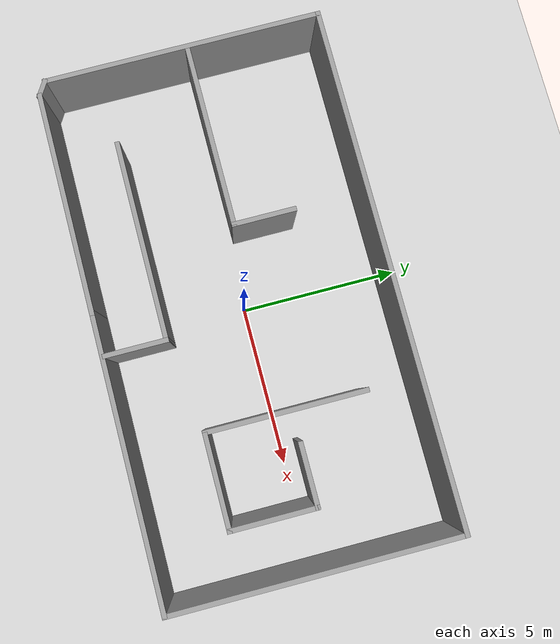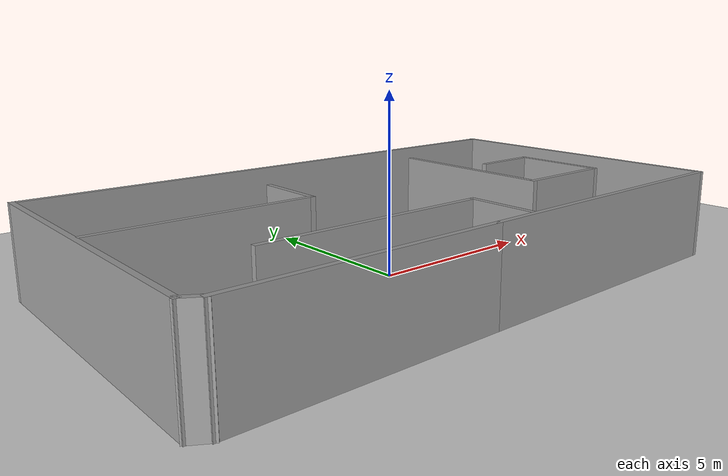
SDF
<sdf version="1.4">
 <world name="default">
  <plugin name="gazebo_octomap" filename="librotors_gazebo_octomap_plugin.so">
   <octomapPubTopic>world/octomap</octomapPubTopic>
   <octomapServiceName>world/get_octomap</octomapServiceName>
  </plugin>
  <plugin name="ros_interface_plugin" filename="librotors_gazebo_ros_interface_plugin.so"/>
  <light name="sun" type="directional">
   <pose>0 0 10 0 -0 0</pose>
   <diffuse>0.8 0.8 0.8 1</diffuse>
   <specular>0.2 0.2 0.2 1</specular>
   <attenuation>
    <range>1000</range>
    <constant>0.9</constant>
    <linear>0.01</linear>
    <quadratic>0.001</quadratic>
   </attenuation>
   <direction>-0.5 0.1 -0.9</direction>
   <spot><inner_angle>0</inner_angle><outer_angle>0</outer_angle><falloff>0</falloff></spot>
  </light>
  <model name="ground_plane">
   <static>1</static>
   <link name="link">
    <collision name="collision">
     <geometry><plane><normal>0 0 1</normal><size>100 100</size></plane></geometry>
     <surface><friction><ode><mu>100</mu><mu2>50</mu2></ode></friction></surface>
    </collision>
    <visual name="visual">
     <cast_shadows>0</cast_shadows>
     <geometry><plane><normal>0 0 1</normal><size>100 100</size></plane></geometry>
     <material>
      <script><uri>file://media/materials/scripts/gazebo.material</uri><name>Gazebo/Grey</name></script>
     </material>
    </visual>
   </link>
  </model>
  <gravity>0 0 -9.8</gravity>
  <magnetic_field>6e-06 2.3e-05 -4.2e-05</magnetic_field>
  <atmosphere type="adiabatic"/>
  <physics type="ode">
   <max_step_size>0.001</max_step_size>
   <real_time_factor>1</real_time_factor>
   <real_time_update_rate>1000</real_time_update_rate>
  </physics>
  <scene><ambient>0.4 0.4 0.4 1</ambient><background>0.7 0.7 0.7 1</background><shadows>1</shadows></scene>
  <spherical_coordinates>
   <surface_model>EARTH_WGS84</surface_model>
   <latitude_deg>0</latitude_deg>
   <longitude_deg>0</longitude_deg>
   <elevation>0</elevation>
   <heading_deg>0</heading_deg>
  </spherical_coordinates>
  <model name="test.world">
   <link name="Wall_0">
    <collision name="Wall_0_Collision">
     <geometry><box><size>7 0.15 2.5</size></box></geometry>
     <pose>0 0 1.25 0 -0 0</pose>
    </collision>
    <visual name="Wall_0_Visual">
     <pose>0 0 1.25 0 -0 0</pose>
     <geometry><box><size>7 0.15 2.5</size></box></geometry>
     <material>
      <script><uri>file://media/materials/scripts/gazebo.material</uri><name>Gazebo/Grey</name></script>
      <ambient>1 1 1 1</ambient>
     </material>
     <meta><layer>0</layer></meta>
    </visual>
    <pose>-4.21082 -4.41082 0 0 -0 3.14159</pose>
   </link>
   <link name="Wall_11">
    <collision name="Wall_11_Collision">
     <geometry><box><size>6.25 0.15 2.5</size></box></geometry>
     <pose>0 0 1.25 0 -0 0</pose>
    </collision>
    <visual name="Wall_11_Visual">
     <pose>0 0 1.25 0 -0 0</pose>
     <geometry><box><size>6.25 0.15 2.5</size></box></geometry>
     <material>
      <script><uri>file://media/materials/scripts/gazebo.material</uri><name>Gazebo/Grey</name></script>
      <ambient>1 1 1 1</ambient>
     </material>
     <meta><layer>0</layer></meta>
    </visual>
    <pose>-2.51437 -2.48681 0 0 -0 0</pose>
   </link>
   <link name="Wall_12">
    <collision name="Wall_12_Collision">
     <geometry><box><size>2 0.15 2.5</size></box></geometry>
     <pose>0 0 1.25 0 -0 0</pose>
    </collision>
    <visual name="Wall_12_Visual">
     <pose>0 0 1.25 0 -0 0</pose>
     <geometry><box><size>2 0.15 2.5</size></box></geometry>
     <material>
      <script><uri>file://media/materials/scripts/gazebo.material</uri><name>Gazebo/Grey</name></script>
      <ambient>1 1 1 1</ambient>
     </material>
     <meta><layer>0</layer></meta>
    </visual>
    <pose>0.535628 -3.41181 0 0 -0 -1.5708</pose>
   </link>
   <link name="Wall_14">
    <collision name="Wall_14_Collision">
     <geometry><box><size>5 0.15 2.5</size></box></geometry>
     <pose>0 0 1.25 0 -0 0</pose>
    </collision>
    <visual name="Wall_14_Visual">
     <pose>0 0 1.25 0 -0 0</pose>
     <geometry><box><size>5 0.15 2.5</size></box></geometry>
     <material>
      <script><uri>file://media/materials/scripts/gazebo.material</uri><name>Gazebo/Grey</name></script>
      <ambient>1 1 1 1</ambient>
     </material>
     <meta><layer>0</layer></meta>
    </visual>
    <pose>3.4103 0.361968 0 0 -0 -1.5708</pose>
   </link>
   <link name="Wall_15">
    <collision name="Wall_15_Collision">
     <geometry><box><size>3 0.15 2.5</size></box></geometry>
     <pose>0 0 1.25 0 -0 0</pose>
    </collision>
    <visual name="Wall_15_Visual">
     <pose>0 0 1.25 0 -0 0</pose>
     <geometry><box><size>3 0.15 2.5</size></box></geometry>
     <material>
      <script><uri>file://media/materials/scripts/gazebo.material</uri><name>Gazebo/Grey</name></script>
      <ambient>1 1 1 1</ambient>
     </material>
     <meta><layer>0</layer></meta>
    </visual>
    <pose>4.8353 -2.06303 0 0 -0 0</pose>
   </link>
   <link name="Wall_16">
    <collision name="Wall_16_Collision">
     <geometry><box><size>2.75 0.15 2.5</size></box></geometry>
     <pose>0 0 1.25 0 -0 0</pose>
    </collision>
    <visual name="Wall_16_Visual">
     <pose>0 0 1.25 0 -0 0</pose>
     <geometry><box><size>2.75 0.15 2.5</size></box></geometry>
     <material>
      <script><uri>file://media/materials/scripts/gazebo.material</uri><name>Gazebo/Grey</name></script>
      <ambient>1 1 1 1</ambient>
     </material>
     <meta><layer>0</layer></meta>
    </visual>
    <pose>6.2603 -0.763032 0 0 -0 1.5708</pose>
   </link>
   <link name="Wall_17">
    <collision name="Wall_17_Collision">
     <geometry><box><size>2 0.15 2.5</size></box></geometry>
     <pose>0 0 1.25 0 -0 0</pose>
    </collision>
    <visual name="Wall_17_Visual">
     <pose>0 0 1.25 0 -0 0</pose>
     <geometry><box><size>2 0.15 2.5</size></box></geometry>
     <material>
      <script><uri>file://media/materials/scripts/gazebo.material</uri><name>Gazebo/Grey</name></script>
      <ambient>1 1 1 1</ambient>
     </material>
     <meta><layer>0</layer></meta>
    </visual>
    <pose>5.3353 0.536968 0 0 -0 3.14159</pose>
   </link>
   <link name="Wall_2">
    <collision name="Wall_2_Collision">
     <geometry><box><size>9 0.15 2.5</size></box></geometry>
     <pose>0 0 1.25 0 -0 0</pose>
    </collision>
    <visual name="Wall_2_Visual">
     <pose>0 0 1.25 0 -0 0</pose>
     <geometry><box><size>9 0.15 2.5</size></box></geometry>
     <material>
      <script><uri>file://media/materials/scripts/gazebo.material</uri><name>Gazebo/Grey</name></script>
      <ambient>1 1 1 1</ambient>
     </material>
     <meta><layer>0</layer></meta>
    </visual>
    <pose>3.63917 -4.41082 0 0 -0 0</pose>
   </link>
   <link name="Wall_3">
    <collision name="Wall_3_Collision">
     <geometry><box><size>9 0.15 2.5</size></box></geometry>
     <pose>0 0 1.25 0 -0 0</pose>
    </collision>
    <visual name="Wall_3_Visual">
     <pose>0 0 1.25 0 -0 0</pose>
     <geometry><box><size>9 0.15 2.5</size></box></geometry>
     <material>
      <script><uri>file://media/materials/scripts/gazebo.material</uri><name>Gazebo/Grey</name></script>
      <ambient>1 1 1 1</ambient>
     </material>
     <meta><layer>0</layer></meta>
    </visual>
    <pose>8.06417 0.014175 0 0 -0 1.5708</pose>
   </link>
   <link name="Wall_4">
    <collision name="Wall_4_Collision">
     <geometry><box><size>16.25 0.15 2.5</size></box></geometry>
     <pose>0 0 1.25 0 -0 0</pose>
    </collision>
    <visual name="Wall_4_Visual">
     <pose>0 0 1.25 0 -0 0</pose>
     <geometry><box><size>16.25 0.15 2.5</size></box></geometry>
     <material>
      <script><uri>file://media/materials/scripts/gazebo.material</uri><name>Gazebo/Grey</name></script>
      <ambient>1 1 1 1</ambient>
     </material>
     <meta><layer>0</layer></meta>
    </visual>
    <pose>0.014175 4.43917 0 0 -0 3.14159</pose>
   </link>
   <link name="Wall_5">
    <collision name="Wall_5_Collision">
     <geometry><box><size>8.75 0.15 2.5</size></box></geometry>
     <pose>0 0 1.25 0 -0 0</pose>
    </collision>
    <visual name="Wall_5_Visual">
     <pose>0 0 1.25 0 -0 0</pose>
     <geometry><box><size>8.75 0.15 2.5</size></box></geometry>
     <material>
      <script><uri>file://media/materials/scripts/gazebo.material</uri><name>Gazebo/Grey</name></script>
      <ambient>1 1 1 1</ambient>
     </material>
     <meta><layer>0</layer></meta>
    </visual>
    <pose>-8.03583 0.139175 0 0 -0 -1.5708</pose>
   </link>
   <link name="Wall_6">
    <collision name="Wall_6_Collision">
     <geometry><box><size>0.621699 0.15 2.5</size></box></geometry>
     <pose>0 0 1.25 0 -0 0</pose>
    </collision>
    <visual name="Wall_6_Visual">
     <pose>0 0 1.25 0 -0 0</pose>
     <geometry><box><size>0.621699 0.15 2.5</size></box></geometry>
     <material>
      <script><uri>file://media/materials/scripts/gazebo.material</uri><name>Gazebo/Grey</name></script>
      <ambient>1 1 1 1</ambient>
     </material>
     <meta><layer>0</layer></meta>
    </visual>
    <pose>-7.83583 -4.28582 0 0 -0 -0.558599</pose>
   </link>
   <link name="Wall_8">
    <collision name="Wall_8_Collision">
     <geometry><box><size>5.75 0.15 2.5</size></box></geometry>
     <pose>0 0 1.25 0 -0 0</pose>
    </collision>
    <visual name="Wall_8_Visual">
     <pose>0 0 1.25 0 -0 0</pose>
     <geometry><box><size>5.75 0.15 2.5</size></box></geometry>
     <material>
      <script><uri>file://media/materials/scripts/gazebo.material</uri><name>Gazebo/Grey</name></script>
      <ambient>1 1 1 1</ambient>
     </material>
     <meta><layer>0</layer></meta>
    </visual>
    <pose>-5.10056 0.288863 0 0 -0 0</pose>
   </link>
   <link name="Wall_9">
    <collision name="Wall_9_Collision">
     <geometry><box><size>2 0.15 2.5</size></box></geometry>
     <pose>0 0 1.25 0 -0 0</pose>
    </collision>
    <visual name="Wall_9_Visual">
     <pose>0 0 1.25 0 -0 0</pose>
     <geometry><box><size>2 0.15 2.5</size></box></geometry>
     <material>
      <script><uri>file://media/materials/scripts/gazebo.material</uri><name>Gazebo/Grey</name></script>
      <ambient>1 1 1 1</ambient>
     </material>
     <meta><layer>0</layer></meta>
    </visual>
    <pose>-2.30056 1.21386 0 0 -0 1.5708</pose>
   </link>
   <static>1</static>
  </model>
 </world>
</sdf>
